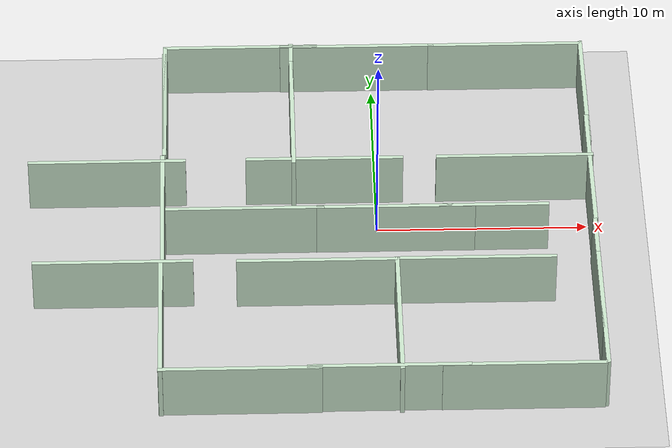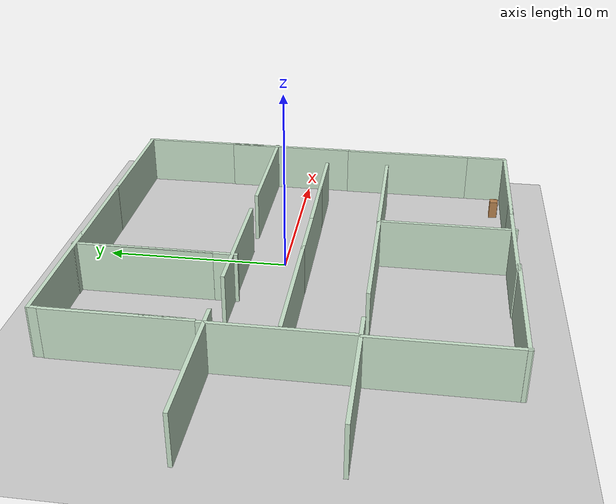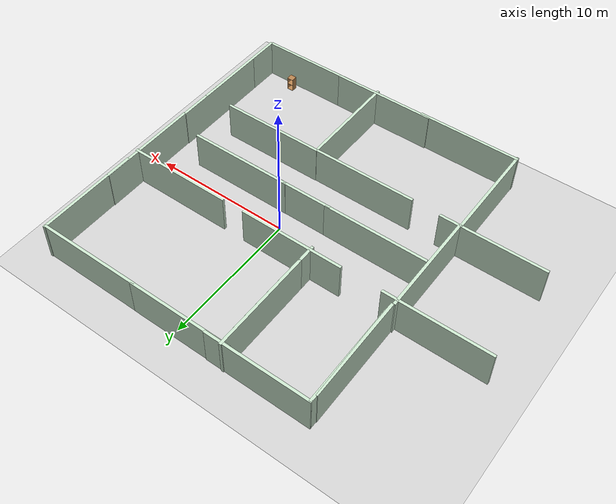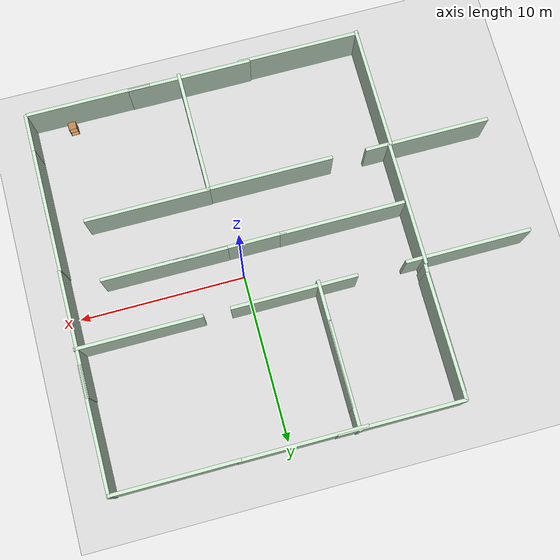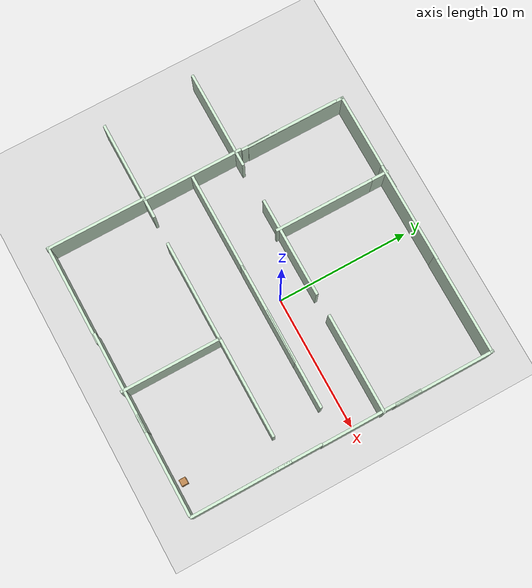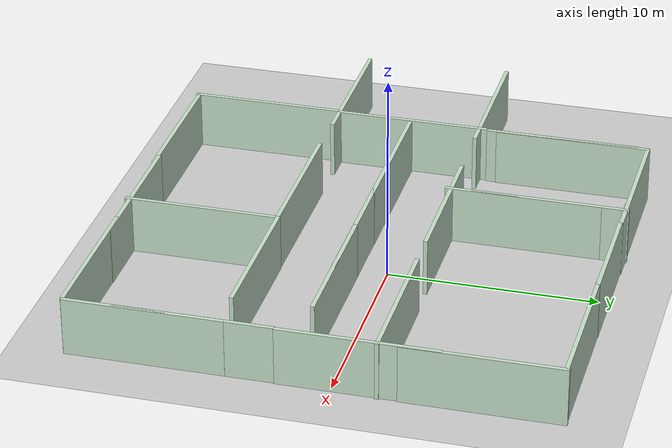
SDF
<sdf version="1.10">
 <world name="hospital_world">
  <physics name="1ms" type="ignored">
   <max_step_size>0.001</max_step_size>
   <real_time_factor>1</real_time_factor>
   <real_time_update_rate>1000</real_time_update_rate>
  </physics>
  <plugin name="gz::sim::systems::Physics" filename="gz-sim-physics-system"/>
  <plugin name="gz::sim::systems::UserCommands" filename="gz-sim-user-commands-system"/>
  <plugin name="gz::sim::systems::SceneBroadcaster" filename="gz-sim-scene-broadcaster-system"/>
  <plugin name="gz::sim::systems::Contact" filename="gz-sim-contact-system"/>
  <gravity>0 0 -9.8000000000000007</gravity>
  <magnetic_field>5.5644999999999998e-06 2.2875799999999999e-05 -4.2388400000000002e-05</magnetic_field>
  <atmosphere type="adiabatic"/>
  <scene>
   <ambient>0.400000006 0.400000006 0.400000006 1</ambient>
   <background>0.699999988 0.699999988 0.699999988 1</background>
   <shadows>true</shadows>
  </scene>
  <model name="ground_plane">
   <static>true</static>
   <link name="link">
    <collision name="collision">
     <geometry><plane><normal>0 0 1</normal><size>100 100</size></plane></geometry>
    </collision>
    <visual name="visual">
     <geometry><plane><normal>0 0 1</normal><size>100 100</size></plane></geometry>
     <material>
      <ambient>0.800000012 0.800000012 0.800000012 1</ambient>
      <diffuse>0.800000012 0.800000012 0.800000012 1</diffuse>
      <specular>0.800000012 0.800000012 0.800000012 1</specular>
     </material>
    </visual>
    <inertial>
     <mass>1</mass>
     <inertia><ixx>1</ixx><ixy>0</ixy><ixz>0</ixz><iyy>1</iyy><iyz>0</iyz><izz>1</izz></inertia>
    </inertial>
   </link>
  </model>
  <model name="grey_wall">
   <static>true</static>
   <link name="link">
    <pose>0 0 1.3999999999999999 0 0 0</pose>
    <collision name="collision">
     <geometry><box><size>7.5 0.20000000000000001 2.7999999999999998</size></box></geometry>
    </collision>
    <visual name="visual">
     <cast_shadows>false</cast_shadows>
     <geometry><box><size>7.5 0.20000000000000001 2.7999999999999998</size></box></geometry>
     <material>
      <ambient>0.776470602 0.87843138 0.784313738 1</ambient>
      <diffuse>0.776470602 0.87843138 0.784313738 1</diffuse>
      <specular>0.200000003 0.200000003 0.200000003 1</specular>
     </material>
    </visual>
    <inertial>
     <mass>1</mass>
     <inertia><ixx>1</ixx><ixy>0</ixy><ixz>0</ixz><iyy>1</iyy><iyz>0</iyz><izz>1</izz></inertia>
    </inertial>
   </link>
   <pose>-10.093099594116211 6.2311000823974609 0 0 0 1.5707963267948963</pose>
  </model>
  <model name="grey_wall_1">
   <static>true</static>
   <link name="link">
    <pose>0 0 1.3999999999999999 0 0 0</pose>
    <collision name="collision">
     <geometry><box><size>7.5 0.20000000000000001 2.7999999999999998</size></box></geometry>
    </collision>
    <visual name="visual">
     <cast_shadows>false</cast_shadows>
     <geometry><box><size>7.5 0.20000000000000001 2.7999999999999998</size></box></geometry>
     <material>
      <ambient>0.776470602 0.87843138 0.784313738 1</ambient>
      <diffuse>0.776470602 0.87843138 0.784313738 1</diffuse>
      <specular>0.200000003 0.200000003 0.200000003 1</specular>
     </material>
    </visual>
    <inertial>
     <mass>1</mass>
     <inertia><ixx>1</ixx><ixy>0</ixy><ixz>0</ixz><iyy>1</iyy><iyz>0</iyz><izz>1</izz></inertia>
    </inertial>
   </link>
   <pose>-10.170969939164154 -1.2801951126570963 0 0 0 1.5707963267948963</pose>
  </model>
  <model name="grey_wall_1_1">
   <static>true</static>
   <link name="link">
    <pose>0 0 1.3999999999999999 0 0 0</pose>
    <collision name="collision">
     <geometry><box><size>7.5 0.20000000000000001 2.7999999999999998</size></box></geometry>
    </collision>
    <visual name="visual">
     <cast_shadows>false</cast_shadows>
     <geometry><box><size>7.5 0.20000000000000001 2.7999999999999998</size></box></geometry>
     <material>
      <ambient>0.776470602 0.87843138 0.784313738 1</ambient>
      <diffuse>0.776470602 0.87843138 0.784313738 1</diffuse>
      <specular>0.200000003 0.200000003 0.200000003 1</specular>
     </material>
    </visual>
    <inertial>
     <mass>1</mass>
     <inertia><ixx>1</ixx><ixy>0</ixy><ixz>0</ixz><iyy>1</iyy><iyz>0</iyz><izz>1</izz></inertia>
    </inertial>
   </link>
   <pose>-10.251196618351116 -8.7141470024844274 0 0 0 1.5707963267948963</pose>
  </model>
  <model name="grey_wall_1_1_1">
   <static>true</static>
   <link name="link">
    <pose>0 0 1.3999999999999999 0 0 0</pose>
    <collision name="collision">
     <geometry><box><size>7.5 0.20000000000000001 2.7999999999999998</size></box></geometry>
    </collision>
    <visual name="visual">
     <cast_shadows>false</cast_shadows>
     <geometry><box><size>7.5 0.20000000000000001 2.7999999999999998</size></box></geometry>
     <material>
      <ambient>0.776470602 0.87843138 0.784313738 1</ambient>
      <diffuse>0.776470602 0.87843138 0.784313738 1</diffuse>
      <specular>0.200000003 0.200000003 0.200000003 1</specular>
     </material>
    </visual>
    <inertial>
     <mass>1</mass>
     <inertia><ixx>1</ixx><ixy>0</ixy><ixz>0</ixz><iyy>1</iyy><iyz>0</iyz><izz>1</izz></inertia>
    </inertial>
   </link>
   <pose>10.143753265970695 -6.2251865733509639 0 0 0 1.5707963267948963</pose>
  </model>
  <model name="grey_wall_1_1_1_1">
   <static>true</static>
   <link name="link">
    <pose>0 0 1.3999999999999999 0 0 0</pose>
    <collision name="collision">
     <geometry><box><size>7.5 0.20000000000000001 2.7999999999999998</size></box></geometry>
    </collision>
    <visual name="visual">
     <cast_shadows>false</cast_shadows>
     <geometry><box><size>7.5 0.20000000000000001 2.7999999999999998</size></box></geometry>
     <material>
      <ambient>0.776470602 0.87843138 0.784313738 1</ambient>
      <diffuse>0.776470602 0.87843138 0.784313738 1</diffuse>
      <specular>0.200000003 0.200000003 0.200000003 1</specular>
     </material>
    </visual>
    <inertial>
     <mass>1</mass>
     <inertia><ixx>1</ixx><ixy>0</ixy><ixz>0</ixz><iyy>1</iyy><iyz>0</iyz><izz>1</izz></inertia>
    </inertial>
   </link>
   <pose>10.184474484838637 1.2167430490082527 0 0 0 1.5707963267948963</pose>
  </model>
  <model name="grey_wall_1_1_1_1_1">
   <static>true</static>
   <link name="link">
    <pose>0 0 1.3999999999999999 0 0 0</pose>
    <collision name="collision">
     <geometry><box><size>7.5 0.20000000000000001 2.7999999999999998</size></box></geometry>
    </collision>
    <visual name="visual">
     <cast_shadows>false</cast_shadows>
     <geometry><box><size>7.5 0.20000000000000001 2.7999999999999998</size></box></geometry>
     <material>
      <ambient>0.776470602 0.87843138 0.784313738 1</ambient>
      <diffuse>0.776470602 0.87843138 0.784313738 1</diffuse>
      <specular>0.200000003 0.200000003 0.200000003 1</specular>
     </material>
    </visual>
    <inertial>
     <mass>1</mass>
     <inertia><ixx>1</ixx><ixy>0</ixy><ixz>0</ixz><iyy>1</iyy><iyz>0</iyz><izz>1</izz></inertia>
    </inertial>
   </link>
   <pose>10.229585391650684 6.7723137703149501 0 0 0 1.5707963267948963</pose>
  </model>
  <model name="grey_wall_0">
   <static>true</static>
   <link name="link">
    <pose>0 0 1.3999999999999999 0 0 0</pose>
    <collision name="collision">
     <geometry><box><size>7.5 0.20000000000000001 2.7999999999999998</size></box></geometry>
    </collision>
    <visual name="visual">
     <cast_shadows>false</cast_shadows>
     <geometry><box><size>7.5 0.20000000000000001 2.7999999999999998</size></box></geometry>
     <material>
      <ambient>0.776470602 0.87843138 0.784313738 1</ambient>
      <diffuse>0.776470602 0.87843138 0.784313738 1</diffuse>
      <specular>0.200000003 0.200000003 0.200000003 1</specular>
     </material>
    </visual>
    <inertial>
     <mass>1</mass>
     <inertia><ixx>1</ixx><ixy>0</ixy><ixz>0</ixz><iyy>1</iyy><iyz>0</iyz><izz>1</izz></inertia>
    </inertial>
   </link>
   <pose>6.5311862888615018 10.383288207406821 0 0 0 0</pose>
  </model>
  <model name="grey_wall_0_1">
   <static>true</static>
   <link name="link">
    <pose>0 0 1.3999999999999999 0 0 0</pose>
    <collision name="collision">
     <geometry><box><size>7.5 0.20000000000000001 2.7999999999999998</size></box></geometry>
    </collision>
    <visual name="visual">
     <cast_shadows>false</cast_shadows>
     <geometry><box><size>7.5 0.20000000000000001 2.7999999999999998</size></box></geometry>
     <material>
      <ambient>0.776470602 0.87843138 0.784313738 1</ambient>
      <diffuse>0.776470602 0.87843138 0.784313738 1</diffuse>
      <specular>0.200000003 0.200000003 0.200000003 1</specular>
     </material>
    </visual>
    <inertial>
     <mass>1</mass>
     <inertia><ixx>1</ixx><ixy>0</ixy><ixz>0</ixz><iyy>1</iyy><iyz>0</iyz><izz>1</izz></inertia>
    </inertial>
   </link>
   <pose>-0.7040511788682835 10.397029088521128 0 0 0 0</pose>
  </model>
  <model name="grey_wall_0_1_1">
   <static>true</static>
   <link name="link">
    <pose>0 0 1.3999999999999999 0 0 0</pose>
    <collision name="collision">
     <geometry><box><size>7.5 0.20000000000000001 2.7999999999999998</size></box></geometry>
    </collision>
    <visual name="visual">
     <cast_shadows>false</cast_shadows>
     <geometry><box><size>7.5 0.20000000000000001 2.7999999999999998</size></box></geometry>
     <material>
      <ambient>0.776470602 0.87843138 0.784313738 1</ambient>
      <diffuse>0.776470602 0.87843138 0.784313738 1</diffuse>
      <specular>0.200000003 0.200000003 0.200000003 1</specular>
     </material>
    </visual>
    <inertial>
     <mass>1</mass>
     <inertia><ixx>1</ixx><ixy>0</ixy><ixz>0</ixz><iyy>1</iyy><iyz>0</iyz><izz>1</izz></inertia>
    </inertial>
   </link>
   <pose>-6.4049045635329662 10.434893552670715 0 0 0 0</pose>
  </model>
  <model name="grey_wall_2">
   <static>true</static>
   <link name="link">
    <pose>0 0 1.3999999999999999 0 0 0</pose>
    <collision name="collision">
     <geometry><box><size>7.5 0.20000000000000001 2.7999999999999998</size></box></geometry>
    </collision>
    <visual name="visual">
     <cast_shadows>false</cast_shadows>
     <geometry><box><size>7.5 0.20000000000000001 2.7999999999999998</size></box></geometry>
     <material>
      <ambient>0.776470602 0.87843138 0.784313738 1</ambient>
      <diffuse>0.776470602 0.87843138 0.784313738 1</diffuse>
      <specular>0.200000003 0.200000003 0.200000003 1</specular>
     </material>
    </visual>
    <inertial>
     <mass>1</mass>
     <inertia><ixx>1</ixx><ixy>0</ixy><ixz>0</ixz><iyy>1</iyy><iyz>0</iyz><izz>1</izz></inertia>
    </inertial>
   </link>
   <pose>-10.058460499853991 6.7144067692560618 0 0 0 1.5707963267948963</pose>
  </model>
  <model name="grey_wall_0_2">
   <static>true</static>
   <link name="link">
    <pose>0 0 1.3999999999999999 0 0 0</pose>
    <collision name="collision">
     <geometry><box><size>7.5 0.20000000000000001 2.7999999999999998</size></box></geometry>
    </collision>
    <visual name="visual">
     <cast_shadows>false</cast_shadows>
     <geometry><box><size>7.5 0.20000000000000001 2.7999999999999998</size></box></geometry>
     <material>
      <ambient>0.776470602 0.87843138 0.784313738 1</ambient>
      <diffuse>0.776470602 0.87843138 0.784313738 1</diffuse>
      <specular>0.200000003 0.200000003 0.200000003 1</specular>
     </material>
    </visual>
    <inertial>
     <mass>1</mass>
     <inertia><ixx>1</ixx><ixy>0</ixy><ixz>0</ixz><iyy>1</iyy><iyz>0</iyz><izz>1</izz></inertia>
    </inertial>
   </link>
   <pose>-6.619285530174241 -12.307146296692119 0 0 0 0</pose>
  </model>
  <model name="grey_wall_0_2_1">
   <static>true</static>
   <link name="link">
    <pose>0 0 1.3999999999999999 0 0 0</pose>
    <collision name="collision">
     <geometry><box><size>7.5 0.20000000000000001 2.7999999999999998</size></box></geometry>
    </collision>
    <visual name="visual">
     <cast_shadows>false</cast_shadows>
     <geometry><box><size>7.5 0.20000000000000001 2.7999999999999998</size></box></geometry>
     <material>
      <ambient>0.776470602 0.87843138 0.784313738 1</ambient>
      <diffuse>0.776470602 0.87843138 0.784313738 1</diffuse>
      <specular>0.200000003 0.200000003 0.200000003 1</specular>
     </material>
    </visual>
    <inertial>
     <mass>1</mass>
     <inertia><ixx>1</ixx><ixy>0</ixy><ixz>0</ixz><iyy>1</iyy><iyz>0</iyz><izz>1</izz></inertia>
    </inertial>
   </link>
   <pose>0.17434620692886504 -12.237605061794902 0 0 0 0</pose>
  </model>
  <model name="grey_wall_0_2_1_1">
   <static>true</static>
   <link name="link">
    <pose>0 0 1.3999999999999999 0 0 0</pose>
    <collision name="collision">
     <geometry><box><size>7.5 0.20000000000000001 2.7999999999999998</size></box></geometry>
    </collision>
    <visual name="visual">
     <cast_shadows>false</cast_shadows>
     <geometry><box><size>7.5 0.20000000000000001 2.7999999999999998</size></box></geometry>
     <material>
      <ambient>0.776470602 0.87843138 0.784313738 1</ambient>
      <diffuse>0.776470602 0.87843138 0.784313738 1</diffuse>
      <specular>0.200000003 0.200000003 0.200000003 1</specular>
     </material>
    </visual>
    <inertial>
     <mass>1</mass>
     <inertia><ixx>1</ixx><ixy>0</ixy><ixz>0</ixz><iyy>1</iyy><iyz>0</iyz><izz>1</izz></inertia>
    </inertial>
   </link>
   <pose>6.3475916334999987 -12.255902387714164 0 0 0 0</pose>
  </model>
  <model name="grey_wall_1_1_1_2">
   <static>true</static>
   <link name="link">
    <pose>0 0 1.3999999999999999 0 0 0</pose>
    <collision name="collision">
     <geometry><box><size>7.5 0.20000000000000001 2.7999999999999998</size></box></geometry>
    </collision>
    <visual name="visual">
     <cast_shadows>false</cast_shadows>
     <geometry><box><size>7.5 0.20000000000000001 2.7999999999999998</size></box></geometry>
     <material>
      <ambient>0.776470602 0.87843138 0.784313738 1</ambient>
      <diffuse>0.776470602 0.87843138 0.784313738 1</diffuse>
      <specular>0.200000003 0.200000003 0.200000003 1</specular>
     </material>
    </visual>
    <inertial>
     <mass>1</mass>
     <inertia><ixx>1</ixx><ixy>0</ixy><ixz>0</ixz><iyy>1</iyy><iyz>0</iyz><izz>1</izz></inertia>
    </inertial>
   </link>
   <pose>10.146230111810015 -8.5414195927496745 0 0 0 1.5707963267948963</pose>
  </model>
  <model name="grey_wall_0_2_1_1_1">
   <static>true</static>
   <link name="link">
    <pose>0 0 1.3999999999999999 0 0 0</pose>
    <collision name="collision">
     <geometry><box><size>7.5 0.20000000000000001 2.7999999999999998</size></box></geometry>
    </collision>
    <visual name="visual">
     <cast_shadows>false</cast_shadows>
     <geometry><box><size>7.5 0.20000000000000001 2.7999999999999998</size></box></geometry>
     <material>
      <ambient>0.776470602 0.87843138 0.784313738 1</ambient>
      <diffuse>0.776470602 0.87843138 0.784313738 1</diffuse>
      <specular>0.200000003 0.200000003 0.200000003 1</specular>
     </material>
    </visual>
    <inertial>
     <mass>1</mass>
     <inertia><ixx>1</ixx><ixy>0</ixy><ixz>0</ixz><iyy>1</iyy><iyz>0</iyz><izz>1</izz></inertia>
    </inertial>
   </link>
   <pose>4.463914350003602 -5.0446254414978915 0 0 0 0</pose>
  </model>
  <model name="grey_wall_1_1_1_3">
   <static>true</static>
   <link name="link">
    <pose>0 0 1.3999999999999999 0 0 0</pose>
    <collision name="collision">
     <geometry><box><size>7.5 0.20000000000000001 2.7999999999999998</size></box></geometry>
    </collision>
    <visual name="visual">
     <cast_shadows>false</cast_shadows>
     <geometry><box><size>7.5 0.20000000000000001 2.7999999999999998</size></box></geometry>
     <material>
      <ambient>0.776470602 0.87843138 0.784313738 1</ambient>
      <diffuse>0.776470602 0.87843138 0.784313738 1</diffuse>
      <specular>0.200000003 0.200000003 0.200000003 1</specular>
     </material>
    </visual>
    <inertial>
     <mass>1</mass>
     <inertia><ixx>1</ixx><ixy>0</ixy><ixz>0</ixz><iyy>1</iyy><iyz>0</iyz><izz>1</izz></inertia>
    </inertial>
   </link>
   <pose>0.76967744979110253 -8.7465458150359012 0 0 0 1.5707963267948963</pose>
  </model>
  <model name="grey_wall_0_2_1_1_1_1">
   <static>true</static>
   <link name="link">
    <pose>0 0 1.3999999999999999 0 0 0</pose>
    <collision name="collision">
     <geometry><box><size>7.5 0.20000000000000001 2.7999999999999998</size></box></geometry>
    </collision>
    <visual name="visual">
     <cast_shadows>false</cast_shadows>
     <geometry><box><size>7.5 0.20000000000000001 2.7999999999999998</size></box></geometry>
     <material>
      <ambient>0.776470602 0.87843138 0.784313738 1</ambient>
      <diffuse>0.776470602 0.87843138 0.784313738 1</diffuse>
      <specular>0.200000003 0.200000003 0.200000003 1</specular>
     </material>
    </visual>
    <inertial>
     <mass>1</mass>
     <inertia><ixx>1</ixx><ixy>0</ixy><ixz>0</ixz><iyy>1</iyy><iyz>0</iyz><izz>1</izz></inertia>
    </inertial>
   </link>
   <pose>-2.9737840360182091 -5.0716366866262961 0 0 0 0</pose>
  </model>
  <model name="grey_wall_0_2_1_1_1_1_1">
   <static>true</static>
   <link name="link">
    <pose>0 0 1.3999999999999999 0 0 0</pose>
    <collision name="collision">
     <geometry><box><size>2.7989999999999999 0.20000000000000001 2.7999999999999998</size></box></geometry>
    </collision>
    <visual name="visual">
     <cast_shadows>false</cast_shadows>
     <geometry><box><size>7.5 0.20000000000000001 2.7999999999999998</size></box></geometry>
     <material>
      <ambient>0.776470602 0.87843138 0.784313738 1</ambient>
      <diffuse>0.776470602 0.87843138 0.784313738 1</diffuse>
      <specular>0.200000003 0.200000003 0.200000003 1</specular>
     </material>
    </visual>
    <inertial>
     <mass>1</mass>
     <inertia><ixx>1</ixx><ixy>0</ixy><ixz>0</ixz><iyy>1</iyy><iyz>0</iyz><izz>1</izz></inertia>
    </inertial>
   </link>
   <pose>-12.479422170986217 -5.0120339212612697 0 0 0 0</pose>
  </model>
  <model name="grey_wall_0_2_1_1_1_2">
   <static>true</static>
   <link name="link">
    <pose>0 0 1.3999999999999999 0 0 0</pose>
    <collision name="collision">
     <geometry><box><size>7.5 0.20000000000000001 2.7999999999999998</size></box></geometry>
    </collision>
    <visual name="visual">
     <cast_shadows>false</cast_shadows>
     <geometry><box><size>7.5 0.20000000000000001 2.7999999999999998</size></box></geometry>
     <material>
      <ambient>0.776470602 0.87843138 0.784313738 1</ambient>
      <diffuse>0.776470602 0.87843138 0.784313738 1</diffuse>
      <specular>0.200000003 0.200000003 0.200000003 1</specular>
     </material>
    </visual>
    <inertial>
     <mass>1</mass>
     <inertia><ixx>1</ixx><ixy>0</ixy><ixz>0</ixz><iyy>1</iyy><iyz>0</iyz><izz>1</izz></inertia>
    </inertial>
   </link>
   <pose>6.6114139061834241 2.1064709420275802 0 0 0 0</pose>
  </model>
  <model name="grey_wall_0_2_1_1_1_2_1">
   <static>true</static>
   <link name="link">
    <pose>0 0 1.3999999999999999 0 0 0</pose>
    <collision name="collision">
     <geometry><box><size>7.5 0.20000000000000001 2.7999999999999998</size></box></geometry>
    </collision>
    <visual name="visual">
     <cast_shadows>false</cast_shadows>
     <geometry><box><size>7.5 0.20000000000000001 2.7999999999999998</size></box></geometry>
     <material>
      <ambient>0.776470602 0.87843138 0.784313738 1</ambient>
      <diffuse>0.776470602 0.87843138 0.784313738 1</diffuse>
      <specular>0.200000003 0.200000003 0.200000003 1</specular>
     </material>
    </visual>
    <inertial>
     <mass>1</mass>
     <inertia><ixx>1</ixx><ixy>0</ixy><ixz>0</ixz><iyy>1</iyy><iyz>0</iyz><izz>1</izz></inertia>
    </inertial>
   </link>
   <pose>-2.4643054255995231 2.0957121214657999 0 0 0 0</pose>
  </model>
  <model name="grey_wall_0_2_1_1_1_2_1_1">
   <static>true</static>
   <link name="link">
    <pose>0 0 1.3999999999999999 0 0 0</pose>
    <collision name="collision">
     <geometry><box><size>7.5 0.20000000000000001 2.7999999999999998</size></box></geometry>
    </collision>
    <visual name="visual">
     <cast_shadows>false</cast_shadows>
     <geometry><box><size>7.5 0.20000000000000001 2.7999999999999998</size></box></geometry>
     <material>
      <ambient>0.776470602 0.87843138 0.784313738 1</ambient>
      <diffuse>0.776470602 0.87843138 0.784313738 1</diffuse>
      <specular>0.200000003 0.200000003 0.200000003 1</specular>
     </material>
    </visual>
    <inertial>
     <mass>1</mass>
     <inertia><ixx>1</ixx><ixy>0</ixy><ixz>0</ixz><iyy>1</iyy><iyz>0</iyz><izz>1</izz></inertia>
    </inertial>
   </link>
   <pose>-12.816460915030941 2.0778061579695795 0 0 0 0</pose>
  </model>
  <model name="grey_wall_1_1_1_1_1_1">
   <static>true</static>
   <link name="link">
    <pose>0 0 1.3999999999999999 0 0 0</pose>
    <collision name="collision">
     <geometry><box><size>7.5 0.20000000000000001 2.7999999999999998</size></box></geometry>
    </collision>
    <visual name="visual">
     <cast_shadows>false</cast_shadows>
     <geometry><box><size>7.5 0.20000000000000001 2.7999999999999998</size></box></geometry>
     <material>
      <ambient>0.776470602 0.87843138 0.784313738 1</ambient>
      <diffuse>0.776470602 0.87843138 0.784313738 1</diffuse>
      <specular>0.200000003 0.200000003 0.200000003 1</specular>
     </material>
    </visual>
    <inertial>
     <mass>1</mass>
     <inertia><ixx>1</ixx><ixy>0</ixy><ixz>0</ixz><iyy>1</iyy><iyz>0</iyz><izz>1</izz></inertia>
    </inertial>
   </link>
   <pose>-3.9291393430438699 6.8421154842701597 0 0 0 1.5707963267948963</pose>
  </model>
  <model name="grey_wall_1_1_1_1_1_1_1">
   <static>true</static>
   <link name="link">
    <pose>0 0 1.3999999999999999 0 0 0</pose>
    <collision name="collision">
     <geometry><box><size>7.5 0.20000000000000001 2.7999999999999998</size></box></geometry>
    </collision>
    <visual name="visual">
     <cast_shadows>false</cast_shadows>
     <geometry><box><size>7.5 0.20000000000000001 2.7999999999999998</size></box></geometry>
     <material>
      <ambient>0.776470602 0.87843138 0.784313738 1</ambient>
      <diffuse>0.776470602 0.87843138 0.784313738 1</diffuse>
      <specular>0.200000003 0.200000003 0.200000003 1</specular>
     </material>
    </visual>
    <inertial>
     <mass>1</mass>
     <inertia><ixx>1</ixx><ixy>0</ixy><ixz>0</ixz><iyy>1</iyy><iyz>0</iyz><izz>1</izz></inertia>
    </inertial>
   </link>
   <pose>-3.9261909366360532 5.5537648103370847 0 0 0 1.5707963267948963</pose>
  </model>
  <model name="grey_wall_0_2_1_1_1_1_1_1">
   <static>true</static>
   <link name="link">
    <pose>0 0 1.3999999999999999 0 0 0</pose>
    <collision name="collision">
     <geometry><box><size>7.5 0.20000000000000001 2.7999999999999998</size></box></geometry>
    </collision>
    <visual name="visual">
     <cast_shadows>false</cast_shadows>
     <geometry><box><size>7.5 0.20000000000000001 2.7999999999999998</size></box></geometry>
     <material>
      <ambient>0.776470602 0.87843138 0.784313738 1</ambient>
      <diffuse>0.776470602 0.87843138 0.784313738 1</diffuse>
      <specular>0.200000003 0.200000003 0.200000003 1</specular>
     </material>
    </visual>
    <inertial>
     <mass>1</mass>
     <inertia><ixx>1</ixx><ixy>0</ixy><ixz>0</ixz><iyy>1</iyy><iyz>0</iyz><izz>1</izz></inertia>
    </inertial>
   </link>
   <pose>-6.2901897493928933 -1.3833082935842571 0 0 0 0</pose>
  </model>
  <model name="grey_wall_0_2_1_1_1_1_1_1_1">
   <static>true</static>
   <link name="link">
    <pose>0 0 1.3999999999999999 0 0 0</pose>
    <collision name="collision">
     <geometry><box><size>7.5 0.20000000000000001 2.7999999999999998</size></box></geometry>
    </collision>
    <visual name="visual">
     <cast_shadows>false</cast_shadows>
     <geometry><box><size>7.5 0.20000000000000001 2.7999999999999998</size></box></geometry>
     <material>
      <ambient>0.776470602 0.87843138 0.784313738 1</ambient>
      <diffuse>0.776470602 0.87843138 0.784313738 1</diffuse>
      <specular>0.200000003 0.200000003 0.200000003 1</specular>
     </material>
    </visual>
    <inertial>
     <mass>1</mass>
     <inertia><ixx>1</ixx><ixy>0</ixy><ixz>0</ixz><iyy>1</iyy><iyz>0</iyz><izz>1</izz></inertia>
    </inertial>
   </link>
   <pose>0.83613832355278328 -1.3916705908430091 0 0 0 0</pose>
  </model>
  <model name="grey_wall_0_2_1_1_1_1_1_1_1_1">
   <static>true</static>
   <link name="link">
    <pose>0 0 1.3999999999999999 0 0 0</pose>
    <collision name="collision">
     <geometry><box><size>7.5 0.20000000000000001 2.7999999999999998</size></box></geometry>
    </collision>
    <visual name="visual">
     <cast_shadows>false</cast_shadows>
     <geometry><box><size>7.5 0.20000000000000001 2.7999999999999998</size></box></geometry>
     <material>
      <ambient>0.776470602 0.87843138 0.784313738 1</ambient>
      <diffuse>0.776470602 0.87843138 0.784313738 1</diffuse>
      <specular>0.200000003 0.200000003 0.200000003 1</specular>
     </material>
    </visual>
    <inertial>
     <mass>1</mass>
     <inertia><ixx>1</ixx><ixy>0</ixy><ixz>0</ixz><iyy>1</iyy><iyz>0</iyz><izz>1</izz></inertia>
    </inertial>
   </link>
   <pose>4.3071257023119989 -1.3816103283441596 0 0 0 0</pose>
  </model>
  <model name="cabinet">
   <static>true</static>
   <link name="cabinet_bottom_plate">
    <inertial>
     <pose>0 0 -1 0 0 0</pose>
     <inertia>
      <ixx>2.0499999999999998</ixx>
      <ixy>0</ixy>
      <ixz>0</ixz>
      <iyy>2.0499999999999998</iyy>
      <iyz>0</iyz>
      <izz>2.0499999999999998</izz>
     </inertia>
     <mass>25</mass>
    </inertial>
    <collision name="cabinet_bottom_plate_geom">
     <pose>0 0 0.01 0 0 0</pose>
     <geometry><box><size>0.45000000000000001 0.45000000000000001 0.02</size></box></geometry>
    </collision>
    <visual name="cabinet_bottom_plate_geom_visual">
     <pose>0 0 0.01 0 0 0</pose>
     <geometry><box><size>0.45000000000000001 0.45000000000000001 0.02</size></box></geometry>
     <material>
      <script><uri>file://media/materials/scripts/gazebo.material</uri><name>Gazebo/Wood</name></script>
     </material>
    </visual>
    <collision name="cabinet_bottom_plate_geom_cabinet_back_plate">
     <pose>0.23499999999999999 0 0.51000000000000001 0 0 0</pose>
     <geometry><box><size>0.02 0.45000000000000001 1.02</size></box></geometry>
    </collision>
    <visual name="cabinet_bottom_plate_geom_cabinet_back_plate_visual">
     <pose>0.23499999999999999 0 0.51000000000000001 0 0 0</pose>
     <geometry><box><size>0.02 0.45000000000000001 1.02</size></box></geometry>
     <material>
      <script><uri>file://media/materials/scripts/gazebo.material</uri><name>Gazebo/Wood</name></script>
     </material>
    </visual>
    <collision name="cabinet_bottom_plate_geom_cabinet_left_plate">
     <pose>0 0.23499999999999999 0.51000000000000001 0 0 0</pose>
     <geometry><box><size>0.45000000000000001 0.02 1.02</size></box></geometry>
    </collision>
    <visual name="cabinet_bottom_plate_geom_cabinet_left_plate_visual">
     <pose>0 0.23499999999999999 0.51000000000000001 0 0 0</pose>
     <geometry><box><size>0.45000000000000001 0.02 1.02</size></box></geometry>
     <material>
      <script><uri>file://media/materials/scripts/gazebo.material</uri><name>Gazebo/Wood</name></script>
     </material>
    </visual>
    <collision name="cabinet_bottom_plate_geom_cabinet_middle_plate">
     <pose>0 0 0.51000000000000001 0 0 0</pose>
     <geometry><box><size>0.45000000000000001 0.45000000000000001 0.02</size></box></geometry>
    </collision>
    <visual name="cabinet_bottom_plate_geom_cabinet_middle_plate_visual">
     <pose>0 0 0.51000000000000001 0 0 0</pose>
     <geometry><box><size>0.45000000000000001 0.45000000000000001 0.02</size></box></geometry>
     <material>
      <script><uri>file://media/materials/scripts/gazebo.material</uri><name>Gazebo/Wood</name></script>
     </material>
    </visual>
    <collision name="cabinet_bottom_plate_geom_cabinet_right_plate">
     <pose>0 -0.23499999999999999 0.51000000000000001 0 0 0</pose>
     <geometry><box><size>0.45000000000000001 0.02 1.02</size></box></geometry>
    </collision>
    <visual name="cabinet_bottom_plate_geom_cabinet_right_plate_visual">
     <pose>0 -0.23499999999999999 0.51000000000000001 0 0 0</pose>
     <geometry><box><size>0.45000000000000001 0.02 1.02</size></box></geometry>
     <material>
      <script><uri>file://media/materials/scripts/gazebo.material</uri><name>Gazebo/Wood</name></script>
     </material>
    </visual>
    <collision name="cabinet_bottom_plate_geom_cabinet_top_plate">
     <pose>0 0 1.01 0 0 0</pose>
     <geometry><box><size>0.45000000000000001 0.45000000000000001 0.02</size></box></geometry>
    </collision>
    <visual name="cabinet_bottom_plate_geom_cabinet_top_plate_visual">
     <pose>0 0 1.01 0 0 0</pose>
     <geometry><box><size>0.45000000000000001 0.45000000000000001 0.02</size></box></geometry>
     <material>
      <script><uri>file://media/materials/scripts/gazebo.material</uri><name>Gazebo/Wood</name></script>
     </material>
    </visual>
   </link>
   <pose>7.7981200218200684 -11.660099983215332 0 0 0 -1.5707963267948963</pose>
  </model>
  <light name="sun" type="directional">
   <pose>0 0 10 0 0 0</pose>
   <intensity>1</intensity>
   <direction>-0.5 0.10000000000000001 -0.90000000000000002</direction>
   <diffuse>0.800000012 0.800000012 0.800000012 1</diffuse>
   <specular>0.200000003 0.200000003 0.200000003 1</specular>
   <attenuation>
    <range>1000</range>
    <linear>0.0099999997764825821</linear>
    <constant>0.89999997615814209</constant>
    <quadratic>0.0010000000474974513</quadratic>
   </attenuation>
   <spot><inner_angle>0</inner_angle><outer_angle>0</outer_angle><falloff>0</falloff></spot>
  </light>
 </world>
</sdf>
